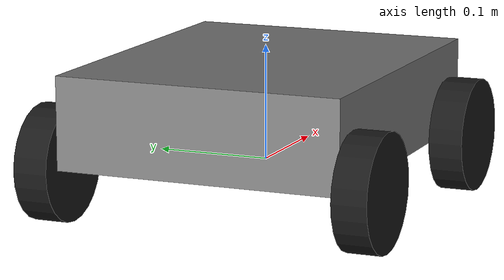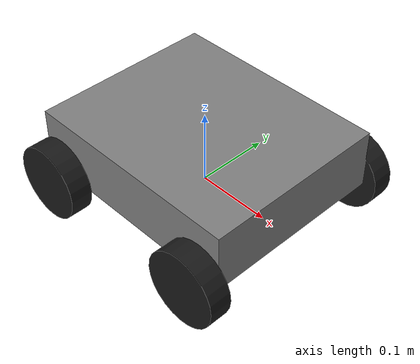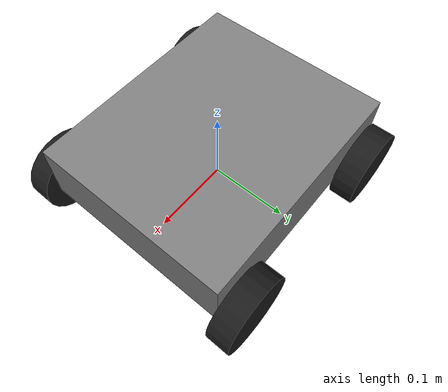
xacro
<?xml version="1.0"?>
<robot xmlns:xacro="http://www.ros.org/wiki/xacro" name="tortoisebot">

  <!-- Robot dimensions (approximate for mecanum TortoiseBot) -->
  <xacro:property name="base_length" value="0.30"/>
  <xacro:property name="base_width" value="0.25"/>
  <xacro:property name="base_height" value="0.08"/>
  <xacro:property name="wheel_radius" value="0.05"/>
  <xacro:property name="wheel_width" value="0.03"/>
  <xacro:property name="wheel_x_offset" value="0.12"/>
  <xacro:property name="wheel_y_offset" value="0.14"/>
  <xacro:property name="lidar_height" value="0.18"/>

  <!-- Base link -->
  <link name="base_footprint"/>

  <joint name="base_joint" type="fixed">
    <parent link="base_footprint"/>
    <child link="base_link"/>
    <origin xyz="0 0 ${wheel_radius}" rpy="0 0 0"/>
  </joint>

  <link name="base_link">
    <visual>
      <geometry>
        <box size="${base_length} ${base_width} ${base_height}"/>
      </geometry>
      <material name="grey">
        <color rgba="0.5 0.5 0.5 1.0"/>
      </material>
    </visual>
    <collision>
      <geometry>
        <box size="${base_length} ${base_width} ${base_height}"/>
      </geometry>
    </collision>
    <inertial>
      <mass value="2.0"/>
      <inertia ixx="0.012" ixy="0" ixz="0" iyy="0.017" iyz="0" izz="0.028"/>
    </inertial>
  </link>

  <!-- Wheel macro -->
  <xacro:macro name="wheel" params="name x y z">
    <link name="${name}_link">
      <visual>
        <geometry>
          <cylinder radius="${wheel_radius}" length="${wheel_width}"/>
        </geometry>
        <material name="black">
          <color rgba="0.1 0.1 0.1 1.0"/>
        </material>
      </visual>
      <collision>
        <geometry>
          <cylinder radius="${wheel_radius}" length="${wheel_width}"/>
        </geometry>
      </collision>
      <inertial>
        <mass value="0.15"/>
        <inertia ixx="0.0002" ixy="0" ixz="0" iyy="0.0002" iyz="0" izz="0.0003"/>
      </inertial>
    </link>
    <joint name="${name}_joint" type="continuous">
      <parent link="base_link"/>
      <child link="${name}_link"/>
      <origin xyz="${x} ${y} ${z}" rpy="${pi/2} 0 0"/>
      <axis xyz="0 0 1"/>
    </joint>
  </xacro:macro>

  <xacro:wheel name="front_left_wheel"  x="${wheel_x_offset}"  y="${wheel_y_offset}"  z="-${base_height/2}"/>
  <xacro:wheel name="front_right_wheel" x="${wheel_x_offset}"  y="-${wheel_y_offset}" z="-${base_height/2}"/>
  <xacro:wheel name="back_left_wheel"   x="-${wheel_x_offset}" y="${wheel_y_offset}"  z="-${base_height/2}"/>
  <xacro:wheel name="back_right_wheel"  x="-${wheel_x_offset}" y="-${wheel_y_offset}" z="-${base_height/2}"/>

  <!-- IMU -->
  <link name="imu_link"/>
  <joint name="imu_joint" type="fixed">
    <parent link="base_link"/>
    <child link="imu_link"/>
    <origin xyz="0 0 0" rpy="0 0 0"/>
  </joint>

  <!-- Lidar -->
  <link name="laser_frame"/>
  <joint name="laser_joint" type="fixed">
    <parent link="base_link"/>
    <child link="laser_frame"/>
    <origin xyz="0 0 ${lidar_height}" rpy="0 0 0"/>
  </joint>

  <!-- Camera -->
  <link name="camera_link"/>
  <joint name="camera_joint" type="fixed">
    <parent link="base_link"/>
    <child link="camera_link"/>
    <origin xyz="${base_length/2 - 0.02} 0 ${base_height/2 + 0.02}" rpy="0 0 0"/>
  </joint>

</robot>
